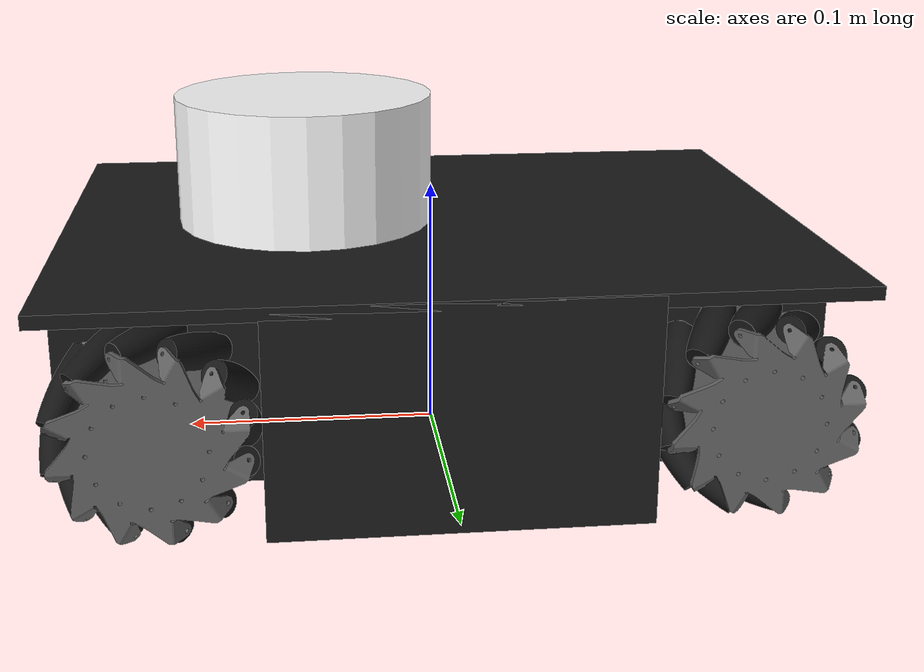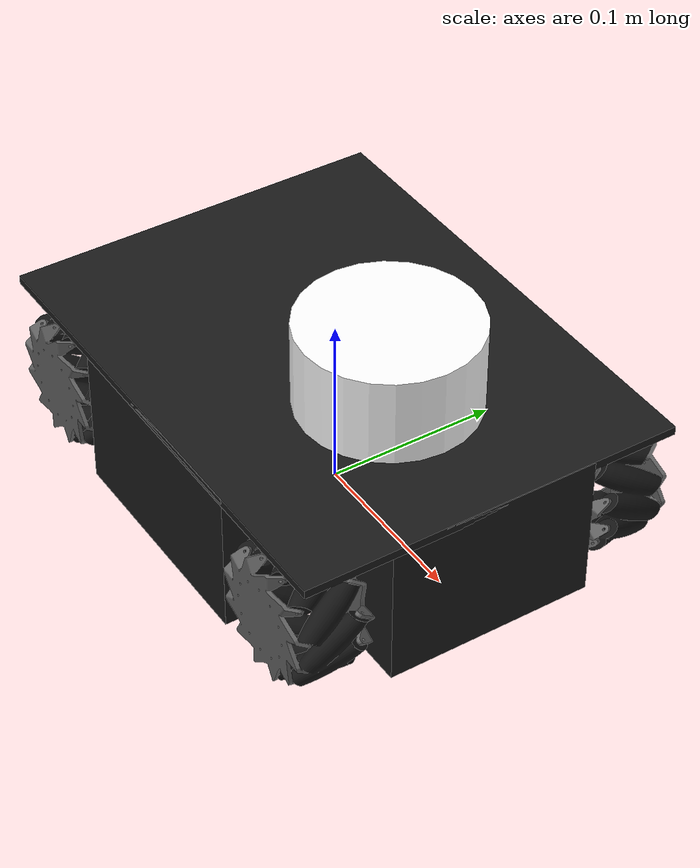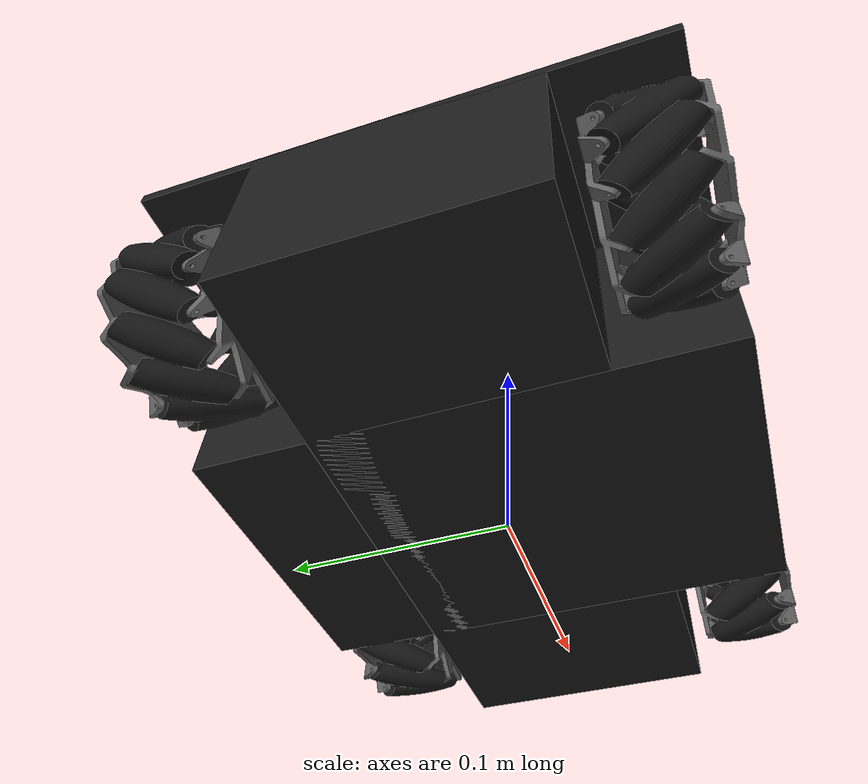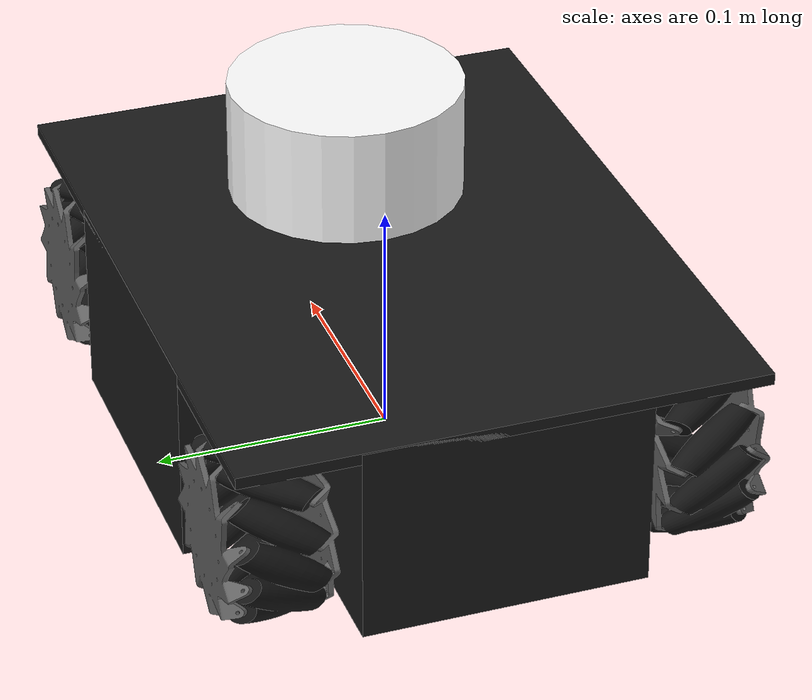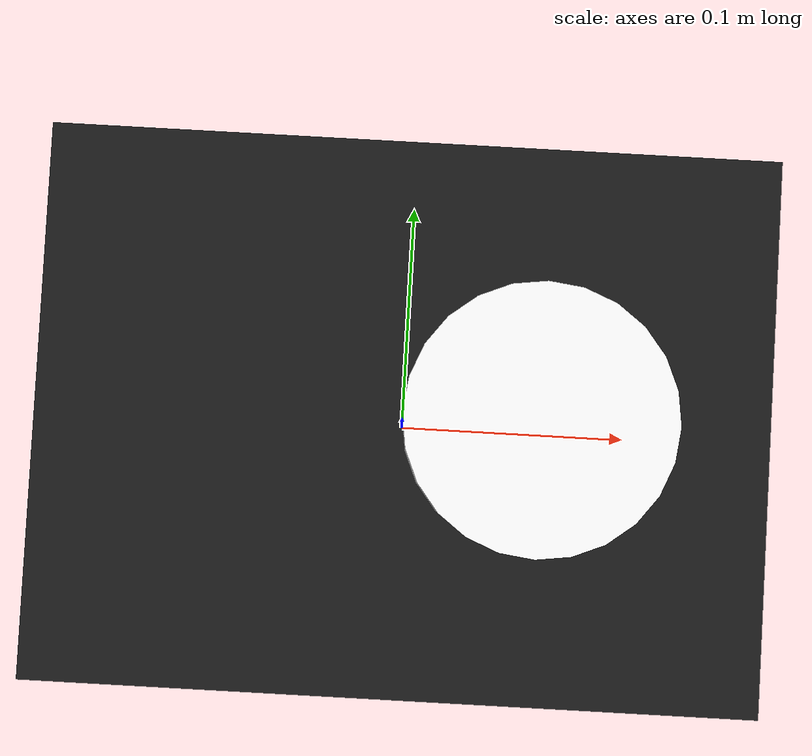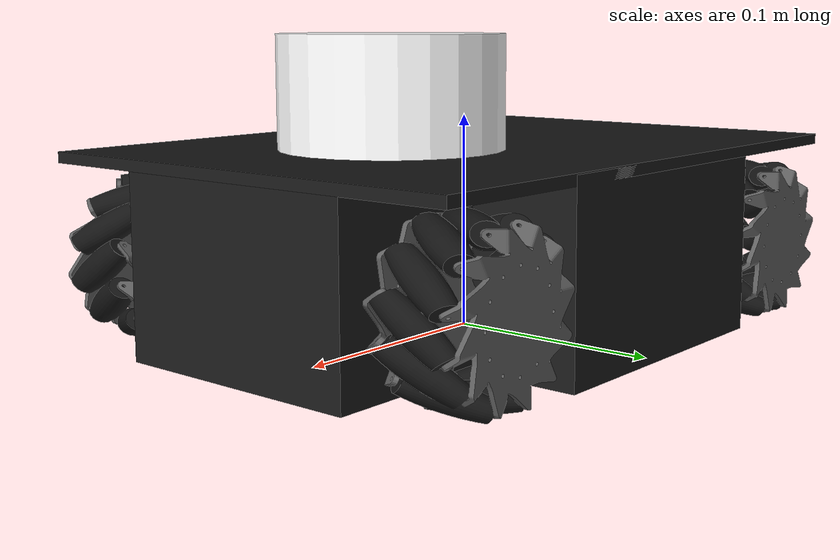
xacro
<?xml version="1.0"?>

<robot name="rover" xmlns:xacro="http://www.ros.org/wiki/xacro">

	<!-- Import rover wheels -->
	<xacro:include filename="$(find xrrover_description)/urdf/wheels/rover_wheel.urdf.xacro" />
	<xacro:include filename="$(find xrrover_description)/urdf/base/rover_base.urdf.xacro" />
	<xacro:include filename="$(find xrrover_description)/urdf/laser/rover_laser.urdf.xacro" />
	<xacro:include filename="$(find xrrover_description)/urdf/gazebo/rover_gazebo.xacro" />

	<!-- Wheel parameters --> <!-- x,y,z in translation from base_link to the center of the wheel -->
	<xacro:property name="wheel_offset_x" value="0.1069" /> <!-- 0.1069 = (0.29-0.0762)/2 = (x-diameter)/2-->
	<xacro:property name="wheel_offset_y" value="0.09" /> <!-- 0.09 = (0.22-2*0.02)/2 = (y-2*wheel_width_center)/2-->
	<xacro:property name="wheel_offset_z" value="-0.0061" />

	<xacro:macro name="robot">
		<xacro:rover_base/>

		<xacro:rover_wheel prefix="rover_front_right" parent="base_link" reflect="false">
			<origin xyz="${wheel_offset_x} -${wheel_offset_y} ${wheel_offset_z}" rpy="0 0 0"/>
		</xacro:rover_wheel>

		<xacro:rover_wheel prefix="rover_front_left" parent="base_link" reflect="true">
			<origin xyz="${wheel_offset_x} ${wheel_offset_y} ${wheel_offset_z}" rpy="0 0 0"/>
		</xacro:rover_wheel>

		<xacro:rover_wheel prefix="rover_rear_left" parent="base_link" reflect="true">
			<origin xyz="-${wheel_offset_x} ${wheel_offset_y} ${wheel_offset_z}" rpy="0 0 0"/>
		</xacro:rover_wheel>

		<xacro:rover_wheel prefix="rover_rear_right" parent="base_link" reflect="false">
			<origin xyz="-${wheel_offset_x} -${wheel_offset_y} ${wheel_offset_z}" rpy="0 0 0"/>
		</xacro:rover_wheel>

		<xacro:rover_laser/>

		<xacro:rover_controller/>

	</xacro:macro>
	<xacro:robot/>

</robot>

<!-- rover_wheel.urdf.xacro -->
<robot name="wheel" xmlns:xacro="http://www.ros.org/wiki/xacro">

    <xacro:property name="PI" value="3.1415926535897931" />

    <!-- Wheels -->
    <xacro:property name="wheel_radius" value="0.0381" /> <!-- setup for cylinder's radius -->
    <xacro:property name="wheel_height" value="0.04" /> <!-- setup for cylinder's length -->
    <xacro:property name="wheel_mass" value="6.5" /> <!-- in kg-->

    <xacro:macro name="cylinder_inertia" params="m r h">
        <inertia  ixx="${m*(3*r*r+h*h)/12}" ixy = "0" ixz = "0"
                  iyy="${m*r*r/2}" iyz = "0"
                  izz="${m*(3*r*r+h*h)/12}" />
    </xacro:macro>

    <xacro:macro name="rover_wheel" params="prefix parent *origin reflect">
        <joint name="${prefix}_wheel_joint" type="continuous">
            <parent link="${parent}"/>
            <child link="${prefix}_wheel_link"/>
            <xacro:insert_block name="origin" />
            <axis xyz="0 1 0" rpy="0 0 0" />
            <limit effort="10" velocity="10"/>
            <joint_properties damping="0.0" friction="0.0"/>
        </joint>

        <link name="${prefix}_wheel_link">
            <visual>
                <origin xyz="0 0 0" rpy="0 0 0" />
                <xacro:if value="${reflect}">
                    <geometry>
                        <mesh filename="package://xrrover_description/meshes/wheels/rover_wheel_1.dae" />
                    </geometry>
                </xacro:if>
                <xacro:unless value="${reflect}">
                    <geometry>
                        <mesh filename="package://xrrover_description/meshes/wheels/rover_wheel_2.dae" />
                    </geometry>
                </xacro:unless>
            </visual>

            <collision>
                <origin xyz="0 0 0" rpy="${PI/2} 0 0" />
                <geometry>
                    <cylinder length="${wheel_height}" radius="${wheel_radius}" />
                </geometry>
            </collision>

            <inertial>
                <mass value="${wheel_mass}" />
                <origin xyz="0 0 0" />
                <xacro:cylinder_inertia  m="${wheel_mass}" r="${wheel_radius}" h="${wheel_height}" />
            </inertial>
        </link>

        <!-- Transmission is important to link the joints and the controller (see summit_xl_control/config/summit_xl_control.yaml)-->
        <transmission name="${prefix}_wheel_joint_trans">
            <type>transmission_interface/SimpleTransmission</type>

            <joint name="${prefix}_wheel_joint" >
                <hardwareInterface>hardware_interface/VelocityJointInterface</hardwareInterface>
            </joint>

            <actuator name="${prefix}_wheel_joint_motor">
                <mechanicalReduction>1</mechanicalReduction>
            </actuator>
        </transmission>

        <gazebo reference="${prefix}_wheel_link">
            <mu1 value="1.0"/>
            <mu2 value="1.0"/>
            <kp value="10000000.0" />
            <kd value="1.0" />
            <fdir1 value="1 0 0"/>
            <turnGravityOff>false</turnGravityOff>
        </gazebo>
    </xacro:macro>
</robot>

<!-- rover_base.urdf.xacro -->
<robot name="base" xmlns:xacro="http://www.ros.org/wiki/xacro">

  <xacro:macro name="rover_base">

    <!-- Robot mechanical and motor parameters -->
	  <xacro:property name="PI" value="3.1415926535897931"/>
	  <xacro:property name="wheel_width" value="0.04" />

	  <!-- BASE FOOTPRINT -->
		<link name="base_footprint">
		  <visual>
			  <origin xyz="0 0 0" rpy="0 0 0" />
			  <geometry>
				 <box size="0.001 0.001 0.001" />
			  </geometry>
		  </visual>
		</link>

		<joint name="rover_base_footprint_joint" type="fixed">
		  <origin xyz="0 0 0.0441" rpy="0 0 0" /> <!-- 0.0441 = 0.0762/2 + 0.006(6mm raise the base to allow room for the wheels to move down) -->
		  <parent link="base_footprint"/>
		  <child link="base_link" />
		</joint>

    <!-- BASE_LINK --> <!-- consists of three link and two fixed joint -->
    <link name="base_link">
      <inertial>
        <mass value="125.0" />
        <origin xyz="0 0 0" />
        <inertia  ixx="1.391" ixy="0.004"  ixz="0.0"  iyy="6.853"  iyz="0.0"  izz="6.125" />
      </inertial>

      <visual>
        <origin xyz="0 0 0" rpy="0 0 0" />
        <geometry>
          <box size="0.1375 0.22 0.085"/> <!-- base's x(0.29) - two wheel radius(0.0762*2) = 0.1376 => 0.1375 -->
        </geometry>
        <material name="darkgrey">
          <color rgba="0.1 0.1 0.1 1"/>
        </material>
      </visual>

      <collision> <!-- base link's collision only define here -->
        <origin xyz="0 0 0" rpy="0 0 0 " />
        <geometry>
          <box size="0.29 0.22 0.085"/>
        </geometry>
      </collision>
    </link>

    <joint name="base_link_attach_joint" type="fixed">
      <parent link="base_link"/>
      <child link="base_link_attach"/>
    </joint>

    <link name="base_link_attach">
      <visual>
        <origin xyz="0 0 0" rpy="0 0 0" />

        <geometry>
          <box size="0.29 0.12 0.085"/>
        </geometry>

        <material name="darkgrey">
          <color rgba="0.1 0.1 0.1 1"/>
        </material>
      </visual>
    </link>

    <joint name="base_link_attach_joint2" type="fixed">
      <parent link="base_link"/>
      <child link="base_link_attach2"/>
    </joint>

    <link name="base_link_attach2">
      <visual>
        <origin xyz="0 0 0.0406" rpy="0 0 0" />

        <geometry>
          <box size="0.29 0.22 0.005"/>
        </geometry>

        <material name="darkgrey">
          <color rgba="0.1 0.1 0.1 1"/>
        </material>
      </visual>
    </link>

  </xacro:macro>

</robot>

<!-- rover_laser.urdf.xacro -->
<robot name="laser" xmlns:xacro="http://www.ros.org/wiki/xacro">

    <xacro:macro name="cylinder_inertia_laser" params="mass r l">
        <inertia    ixx="${mass*(3*r*r+l*l)/12}" ixy = "0" ixz = "0"
                    iyy="${mass*(3*r*r+l*l)/12}" iyz = "0"
                    izz="${mass*(r*r)/2}" />
    </xacro:macro>

    <xacro:macro name="rover_laser">
        <joint name="joint_sensor_laser" type="fixed">
            <origin xyz="0.05 0 0.0691" rpy="0 0 0"/> <!-- 0.0691 = 0.0381 + cylinder_length/2 + base_link_to_footprint's_0.006 -->
            <parent link="base_link"/>
            <child link="base_scan"/>
        </joint>

        <link name="base_scan">
            <inertial>
                <origin xyz="0 0 0" rpy="0 0 0" />
                <mass value="1" />
                <xacro:cylinder_inertia_laser mass="1" r="0.05" l="0.1" />
            </inertial>

            <visual>
                <origin xyz="0 0 0" rpy="0 0 0" />
                <geometry>
                <cylinder radius="0.05" length="0.05"/>
                </geometry>
                <material name="white">
                    <color rgba="${255/255} ${255/255} ${255/255} 1.0"/>
                </material>
            </visual>

            <collision>
                <origin xyz="0 0 0" rpy="0 0 0"/>
                <geometry>
                <cylinder radius="0.05" length="0.05"/>
                </geometry>
            </collision>
        </link>
    </xacro:macro>

</robot>
